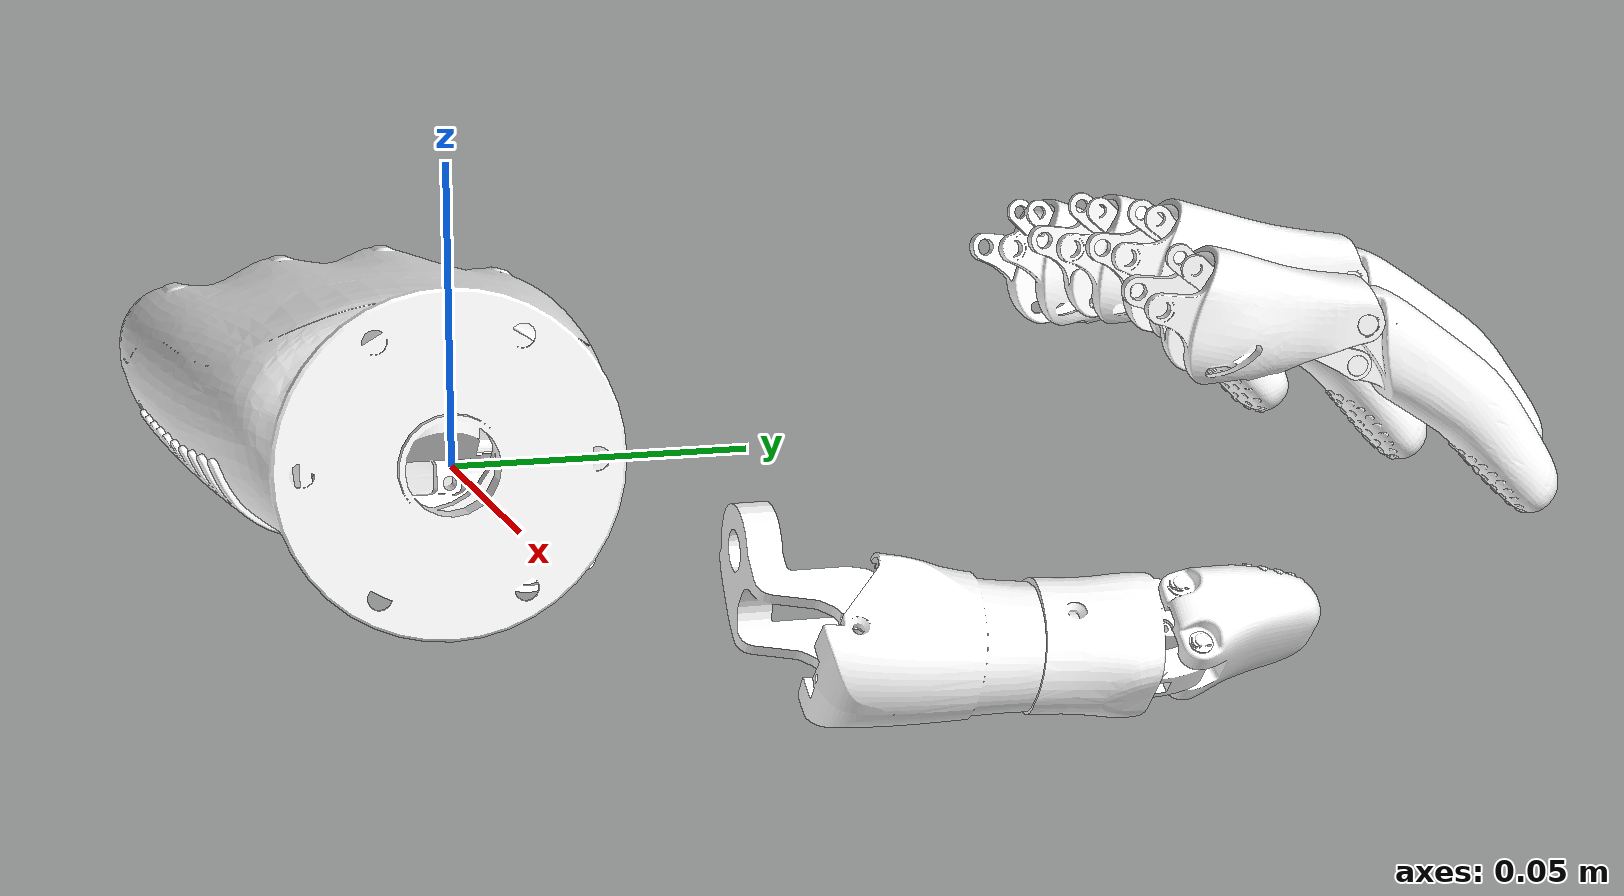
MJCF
<mujoco model="rohand_left">
  <compiler angle="radian"/>
  <asset>
    <mesh name="base_link" content_type="model/stl" file="../assets/meshes_l/base_link.STL"/>
    <mesh name="if_proximal_link" content_type="model/stl" file="../assets/meshes_l/if_proximal_link.STL"/>
    <mesh name="if_distal_link" content_type="model/stl" file="../assets/meshes_l/if_distal_link.STL"/>
    <mesh name="if_connecting_link" content_type="model/stl" file="../assets/meshes_l/if_connecting_link.STL"/>
    <mesh name="mf_proximal_link" content_type="model/stl" file="../assets/meshes_l/mf_proximal_link.STL"/>
    <mesh name="mf_distal_link" content_type="model/stl" file="../assets/meshes_l/mf_distal_link.STL"/>
    <mesh name="mf_connecting_link" content_type="model/stl" file="../assets/meshes_l/mf_connecting_link.STL"/>
    <mesh name="rf_proximal_link" content_type="model/stl" file="../assets/meshes_l/rf_proximal_link.STL"/>
    <mesh name="rf_distal_link" content_type="model/stl" file="../assets/meshes_l/rf_distal_link.STL"/>
    <mesh name="rf_connecting_link" content_type="model/stl" file="../assets/meshes_l/rf_connecting_link.STL"/>
    <mesh name="lf_proximal_link" content_type="model/stl" file="../assets/meshes_l/lf_proximal_link.STL"/>
    <mesh name="lf_distal_link" content_type="model/stl" file="../assets/meshes_l/lf_distal_link.STL"/>
    <mesh name="lf_connecting_link" content_type="model/stl" file="../assets/meshes_l/lf_connecting_link.STL"/>
    <mesh name="th_root_link" content_type="model/stl" file="../assets/meshes_l/th_root_link.STL"/>
    <mesh name="th_proximal_link" content_type="model/stl" file="../assets/meshes_l/th_proximal_link.STL"/>
    <mesh name="th_slider_link" content_type="model/stl" file="../assets/meshes_l/th_slider_link.STL"/>
    <mesh name="th_connecting_link" content_type="model/stl" file="../assets/meshes_l/th_connecting_link.STL"/>
    <mesh name="th_distal_link" content_type="model/stl" file="../assets/meshes_l/th_distal_link.STL"/>
    <mesh name="th_slider_connecting_link" content_type="model/stl" file="../assets/meshes_l/th_slider_connecting_link.STL"/>
  </asset>
  <worldbody>
    <body name="base_link" gravcomp="1">
      <geom type="mesh" rgba="1 1 1 1" mesh="base_link"/>
    </body>
    <body name="if_proximal_link" pos="0.0215356 0.110229 0.0277474" quat="0.998472 -0.00121866 0.0494591 -0.0246022">
      <inertial pos="0.00759963 0.0174149 -0.00283219" quat="0.485891 0.513505 -0.513693 0.48615" mass="0.0293521" diaginertia="2.37494e-07 2.32569e-07 1.02726e-07"/>
      <joint name="if_proximal_link" pos="0 0 0" axis="-1 0 0" ref="0.3" damping="0.01"/>
      <geom type="mesh" rgba="1 1 1 1" mesh="if_proximal_link"/>
      <body name="if_distal_link" pos="0 0.0357192 -0.00379239">
        <inertial pos="0.00709506 -4.21357e-05 -0.0028895" quat="0 0.707107 0 0.707107" mass="0.0318308" diaginertia="1.56479e-06 1.56373e-06 9.99018e-7"/>
        <joint name="if_distal_link" pos="0 0 0" axis="-1 0 0"/>
        <geom type="mesh" rgba="1 1 1 1" mesh="if_distal_link"/>
      </body>
    </body>
    <body name="if_connecting_link" pos="0.0251127 0.116346 0.0333594" quat="0.998472 -0.00121866 0.0494591 -0.0246022">
      <inertial pos="0.00489999 0.0141485 -0.00931294" quat="0.871381 0.490608 0 0" mass="0.0200341" diaginertia="2.67058e-08 2.63769e-08 3.50323e-10"/>
      <joint name="if_connecting_link" pos="0 0 0" axis="-1 0 0"/>
      <geom type="mesh" rgba="1 1 1 1" mesh="if_connecting_link"/>
    </body>
    <body name="mf_proximal_link" pos="0.00144328 0.111668 0.0317646" quat="1 -1.154e-07 -0.000718979 -0.000160505">
      <inertial pos="0.00759986 0.0193215 -0.00405752" quat="0.707099 0.707115 0 0" mass="0.0237723" diaginertia="3.62189e-07 3.54265e-07 1.37124e-07"/>
      <joint name="mf_proximal_link" pos="0 0 0" axis="-1 0 0" ref="0.3" damping="0.01"/>
      <geom type="mesh" rgba="1 1 1 1" mesh="mf_proximal_link"/>
      <body name="mf_distal_link" pos="0 0.0405988 -0.00577519">
        <inertial pos="0.00709507 4.45296e-05 -0.00290427" quat="0 0.707107 0 0.707107" mass="0.03118308" diaginertia="1.56527e-06 1.56324e-06 9.99018e-7"/>
        <joint name="mf_distal_link" pos="0 0 0" axis="-1 0 0"/>
        <geom type="mesh" rgba="1 1 1 1" mesh="mf_distal_link"/>
      </body>
    </body>
    <body name="mf_connecting_link" pos="0.00413676 0.117958 0.0376717" quat="1 -1.154e-07 -0.000718979 -0.000160505">
      <inertial pos="0.00489999 0.0164491 -0.0103993" quat="0.864959 0.501842 0 0" mass="0.0215109" diaginertia="3.73208e-08 3.69827e-08 3.6101e-10"/>
      <joint name="mf_connecting_link" pos="0 0 0" axis="-1 0 0"/>
      <geom type="mesh" rgba="1 1 1 1" mesh="mf_connecting_link"/>
    </body>
    <body name="rf_proximal_link" pos="-0.0185369 0.108588 0.0302829" quat="0.99939 -0.000281476 -0.00829235 0.0339234">
      <inertial pos="0.00759942 0.0173278 -0.00332764" quat="0.493096 0.506465 -0.506756 0.493506" mass="0.0293531" diaginertia="2.37515e-07 2.3259e-07 1.02729e-07"/>
      <joint name="rf_proximal_link" pos="0 0 0" axis="-1 0 0" ref="0.3" damping="0.01"/>
      <geom type="mesh" rgba="1 1 1 1" mesh="rf_proximal_link"/>
      <body name="rf_distal_link" pos="0 0.0355965 -0.00480918">
        <inertial pos="0.00756929 -0.000209135 -0.00288247" quat="0 0.707107 0 0.707107" mass="0.03118308" diaginertia="1.56479e-06 1.56372e-06 9.99018e-7"/>
        <joint name="rf_distal_link" pos="0 0 0" axis="-1 0 0"/>
        <geom type="mesh" rgba="1 1 1 1" mesh="rf_distal_link"/>
      </body>
    </body>
    <body name="rf_connecting_link" pos="-0.0163677 0.115044 0.0362256" quat="0.99939 -0.000281476 -0.00829235 0.0339234">
      <inertial pos="0.00489999 0.0138312 -0.00977799" quat="0.879413 0.476059 0 0" mass="0.0200341" diaginertia="2.67058e-08 2.63769e-08 3.50323e-10"/>
      <joint name="rf_connecting_link" pos="0 0 0" axis="-1 0 0"/>
      <geom type="mesh" rgba="1 1 1 1" mesh="rf_connecting_link"/>
    </body>
    <body name="lf_proximal_link" pos="-0.0384957 0.104919 0.0261462" quat="0.996858 -0.00313552 -0.0577473 0.0541267">
      <inertial pos="0.00760071 0.015675 -0.0029499" quat="0.500638 0.499004 -0.49936 0.500995" mass="0.0277912" diaginertia="1.82316e-07 1.76548e-07 9.42052e-08"/>
      <joint name="lf_proximal_link" pos="0 0 0" axis="-1 0 0" ref="0.3" damping="0.01"/>
      <geom type="mesh" rgba="1 1 1 1" mesh="lf_proximal_link"/>
      <body name="lf_distal_link" pos="0 0.0315914 -0.00464655">
        <inertial pos="0.00709503 -0.000147589 -0.00285785" quat="-0.150667 0.690869 -0.150667 0.690869" mass="0.03118308" diaginertia="1.56576e-06 1.56276e-06 9.99018e-7"/>
        <joint name="lf_distal_link" pos="0 0 0" axis="-1 0 0"/>
        <geom type="mesh" rgba="1 1 1 1" mesh="lf_distal_link"/>
      </body>
    </body>
    <body name="lf_connecting_link" pos="-0.0371888 0.111395 0.0323159" quat="0.996858 -0.00313552 -0.0577473 0.0541267">
      <inertial pos="0.00489991 0.0123223 -0.00897716" quat="0.891943 0.452147 0 0" mass="0.02176993" diaginertia="1.94958e-08 1.92587e-08 2.55967e-10"/>
      <joint name="lf_connecting_link" pos="0 0 0" axis="-1 0 0"/>
      <geom type="mesh" rgba="1 1 1 1" mesh="lf_connecting_link"/>
    </body>
    <body name="th_root_link" pos="0.019251 0.028856 -0.012557" quat="-3.67321e-06 1 -0.000158505 5.82221e-10">
      <inertial pos="0.00299514 -0.0205271 0.00582141" quat="0.74851 0.441785 0.0250246 0.493896" mass="0.0708321" diaginertia="0.000154618 0.000128515 6.37189e-05"/>
      <joint name="th_root_link" pos="0 0 0" axis="0 -1 0" ref="0.75" damping="0.05"/>
      <geom type="mesh" rgba="1 1 1 1" mesh="th_root_link"/>
      <body name="th_slider_connecting_link" pos="0.0147446 -0.0365663 0.00667895" quat="4.68762e-05 0.399399 -0.000107535 0.916777">
        <inertial pos="0.0079 0.00390438 0.00385953" quat="0.38535 0.922771 0 0" mass="0.886531" diaginertia="1.54015e-09 1.3854e-09 1.64213e-10"/>
        <joint name="th_slider_connecting_link" pos="0 0 0" axis="-1 0 0" ref="0.55" damping="0.05"/>
        <geom type="mesh" rgba="1 1 1 1" mesh="th_slider_connecting_link"/>
        <body name="th_slider_link" pos="0 0.0078087 0.0077191" quat="0.707107 -6.94115e-05 -0.707107 6.94115e-05">
          <inertial pos="0.00146645 0.0143829 -0.00789993" quat="0.70608 0.70608 -0.038099 -0.038099" mass="0.03164989" diaginertia="1.74468e-07 1.47922e-07 3.02562e-08"/>
          <joint name="th_slider_link" pos="0 0 0" axis="0 0 -1" damping="0.05"/>
          <geom type="mesh" rgba="1 1 1 1" mesh="th_slider_link"/>
          <body name="th_connecting_link" pos="0.00482734 0.0319803 -0.00329993" quat="0.707105 0.00135448 0.707105 -0.0013545">
            <inertial pos="0.00441584 0.00572792 -0.00043772" quat="0.529921 0.468171 -0.468171 0.529921" mass="0.02406527" diaginertia="6.93499e-09 5.13371e-09 3.44337e-09"/>
            <joint name="th_connecting_link" pos="0 0 0" axis="-1 0 0" damping="0.05"/>
            <geom type="mesh" rgba="1 1 1 1" mesh="th_connecting_link"/>
            <body name="th_distal_link" pos="-0.00299999 0.00983198 -0.00115858">
              <inertial pos="0.0068168 -0.000637415 -0.011298" quat="0 0.707107 0 0.707107" mass="0.182314" diaginertia="1.23939e-05 1.23781e-05 6.36213e-6"/>
              <joint name="th_distal_link" pos="0 0 0" axis="-1 0 0"/>
              <geom type="mesh" rgba="1 1 1 1" mesh="th_distal_link"/>
            </body>
          </body>
          <body name="th_proximal_link" pos="0.000251708 0.00254797 -0.0009" quat="0.625198 0.244895 -0.270279 -0.690003">
            <inertial pos="-0.00892032 -0.00704212 -0.00302753" quat="0.193977 0.68015 0.319235 0.63076" mass="0.0544275" diaginertia="2.19932e-04 1.98161e-04 3.24967e-05"/>
            <joint name="th_proximal_link" pos="0 0 0" axis="-1 0 0" type="slide"/>
            <geom type="mesh" rgba="1 1 1 1" mesh="th_proximal_link"/>
          </body>
        </body>
      </body>
    </body>
  </worldbody>
  <contact>
    <exclude body1="base_link" body2="if_proximal_link"/>
    <exclude body1="base_link" body2="if_distal_link"/>
    <exclude body1="base_link" body2="if_connecting_link"/>
    <exclude body1="if_connecting_link" body2="if_proximal_link"/>
    <exclude body1="if_connecting_link" body2="if_distal_link"/>
    <exclude body1="if_proximal_link" body2="if_distal_link"/>
    <exclude body1="base_link" body2="mf_proximal_link"/>
    <exclude body1="base_link" body2="mf_distal_link"/>
    <exclude body1="base_link" body2="mf_connecting_link"/>
    <exclude body1="mf_connecting_link" body2="mf_proximal_link"/>
    <exclude body1="mf_connecting_link" body2="mf_distal_link"/>
    <exclude body1="mf_proximal_link" body2="mf_distal_link"/>
    <exclude body1="base_link" body2="rf_proximal_link"/>
    <exclude body1="base_link" body2="rf_distal_link"/>
    <exclude body1="base_link" body2="rf_connecting_link"/>
    <exclude body1="rf_connecting_link" body2="rf_proximal_link"/>
    <exclude body1="rf_connecting_link" body2="rf_distal_link"/>
    <exclude body1="rf_proximal_link" body2="rf_distal_link"/>
    <exclude body1="base_link" body2="lf_proximal_link"/>
    <exclude body1="base_link" body2="lf_distal_link"/>
    <exclude body1="base_link" body2="lf_connecting_link"/>
    <exclude body1="lf_connecting_link" body2="lf_proximal_link"/>
    <exclude body1="lf_connecting_link" body2="lf_distal_link"/>
    <exclude body1="lf_proximal_link" body2="lf_distal_link"/>
    <exclude body1="th_root_link" body2="base_link"/>
    <exclude body1="th_root_link" body2="th_slider_link"/>
    <exclude body1="th_root_link" body2="th_connecting_link"/>
    <exclude body1="th_root_link" body2="th_distal_link"/>
    <exclude body1="th_root_link" body2="th_slider_link"/>
    <exclude body1="th_root_link" body2="th_proximal_link"/>
    <exclude body1="th_root_link" body2="th_slider_connecting_link"/>
    <exclude body1="th_slider_connecting_link" body2="base_link"/>
    <exclude body1="th_slider_connecting_link" body2="th_slider_link"/>
    <exclude body1="th_slider_connecting_link" body2="th_connecting_link"/>
    <exclude body1="th_slider_connecting_link" body2="th_distal_link"/>
    <exclude body1="th_slider_connecting_link" body2="th_proximal_link"/>
    <exclude body1="th_slider_link" body2="base_link"/>
    <exclude body1="th_slider_link" body2="th_connecting_link"/>
    <exclude body1="th_slider_link" body2="th_distal_link"/>
    <exclude body1="th_slider_link" body2="th_proximal_link"/>
    <exclude body1="th_connecting_link" body2="base_link"/>
    <exclude body1="th_connecting_link" body2="th_distal_link"/>
    <exclude body1="th_connecting_link" body2="th_proximal_link"/>
    <exclude body1="th_distal_link" body2="base_link"/>
    <exclude body1="th_distal_link" body2="th_proximal_link"/>
    <exclude body1="th_proximal_link" body2="base_link"/>
  </contact>
  <equality>
    <connect body1="if_distal_link" body2="if_connecting_link" anchor="0.011 0.001 -0.008" solimp="0.95 0.99 0.001" solref="0.005 1"/>
    <connect body1="mf_distal_link" body2="mf_connecting_link" anchor="0.011 0.001 -0.008" solimp="0.95 0.99 0.001" solref="0.005 1"/>
    <connect body1="rf_distal_link" body2="rf_connecting_link" anchor="0.011 0.001 -0.008" solimp="0.95 0.99 0.001" solref="0.005 1"/>
    <connect body1="lf_distal_link" body2="lf_connecting_link" anchor="0.011 0.001 -0.008" solimp="0.99 0.99 0.001" solref="0.001 1"/>
    <connect body1="th_proximal_link" body2="th_root_link" anchor="0.018 0.001 0.003" solimp="0.95 0.99 0.001" solref="0.005 1"/>
    <connect body1="th_distal_link" body2="th_proximal_link" anchor="-0.001 -0.0015 -0.010" solimp="0.95 0.95 0.001" solref="0.005 1"/>
  </equality>
  <actuator>
    <position name="index_finger" joint="if_proximal_link" kp="1" ctrlrange="0 1.44"/>
    <position name="middle_finger" joint="mf_proximal_link" kp="1" ctrlrange="0 1.44"/>
    <position name="ring_finger" joint="rf_proximal_link" kp="1" ctrlrange="0 1.44"/>
    <position name="little_finger" joint="lf_proximal_link" kp="1" ctrlrange="0 1.44"/>
    <position name="thumb_root" joint="th_root_link" kp="1" ctrlrange="0 1.57"/>
    <position name="thumb" joint="th_slider_connecting_link" kp="1" ctrlrange="0 0.7"/>
  </actuator>
</mujoco>
